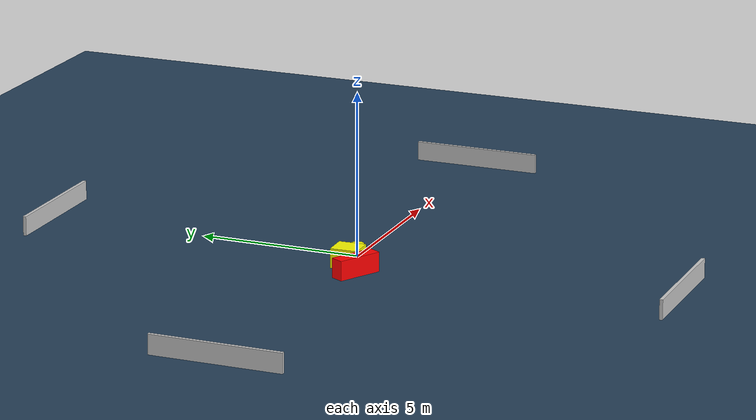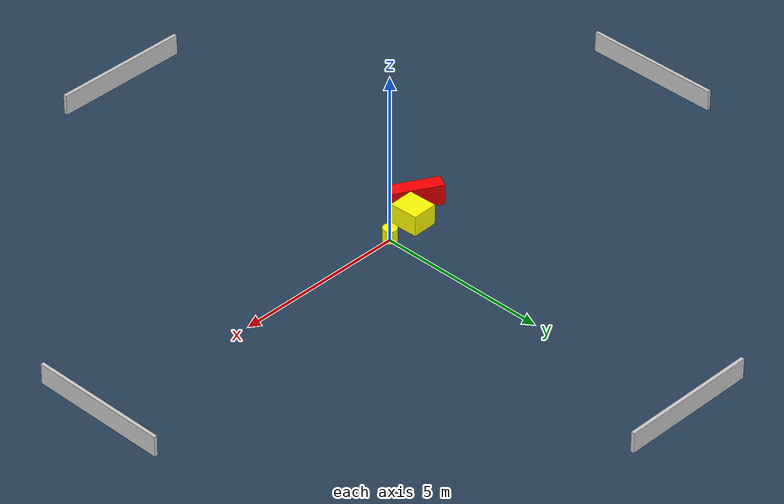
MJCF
<?xml version="1.0" ?>
<mujoco model="generated_environment">
  <option timestep="0.01" integrator="RK4" cone="elliptic"/>
  <default>
    <geom density="1"/>
  </default>
  <asset>
    <texture builtin="gradient" height="3072" name="skybox" rgb1="0.3 0.5 0.7" rgb2="0 0 0" type="skybox" width="512"/>
    <texture builtin="checker" height="300" name="groundplane" rgb1="0.2 0.3 0.4" rgb2="0.1 0.2 0.3" type="2d" width="300"/>
    <material name="groundplane" reflectance="0.2" texrepeat="5 5" texture="groundplane"/>
  </asset>
  <worldbody>
    <light dir="0 0 -1" directional="true" pos="0 0 1.5"/>
    <geom condim="3" friction="0.5 0.005 0.001" material="groundplane" name="floor" pos="0 0 0" size="0 0 0.05" type="plane"/>
    <body name="walls">
      <geom name="wall_1" condim="4" pos="-10.0 0.0 0.3" rgba="0.800000011920929 0.800000011920929 0.800000011920929 1.0" size="0.05 2.0 0.3" type="box"/>
      <geom name="wall_2" condim="4" pos="10.0 0.0 0.3" rgba="0.800000011920929 0.800000011920929 0.800000011920929 1.0" size="0.05 2.0 0.3" type="box"/>
      <geom name="wall_3" condim="4" pos="0.0 -10.0 0.3" rgba="0.800000011920929 0.800000011920929 0.800000011920929 1.0" size="2.0 0.05 0.3" type="box"/>
      <geom name="wall_4" condim="4" pos="0.0 10.0 0.3" rgba="0.800000011920929 0.800000011920929 0.800000011920929 1.0" size="2.0 0.05 0.3" type="box"/>
    </body>
    <body name="robot">
      <joint name="joint_x" type="slide" pos="0 0 0" axis="1 0 0"/>
      <joint name="joint_y" type="slide" pos="0 0 0" axis="0 1 0"/>
      <geom name="robot" type="cylinder" pos="0.0 0.0 0.2" size="0.2 0.2 0.0" mass="5.0" friction="1.0 0.005 0.0001" condim="4" rgba="1.0 1.0 0.0 1.0"/>
    </body>
    <body name="obstacle_1_movable">
      <geom name="obstacle_1_movable" condim="4" pos="-0.9252691553475401 -0.08751594734843145 0.3" euler="0 0 91.8431269163504" friction="0.0 0.005 0.001" rgba="1.0 1.0 0.0 1.0" size="0.4173488955547916 0.3716100426275648 0.3" type="box" mass="0.1"/>
      <joint type="free"/>
    </body>
    <body name="obstacle_2_static">
      <geom name="obstacle_2_static" condim="4" pos="-1.58198393165421 -0.6027750526638015 0.3" euler="0 0 331.12608319622296" friction="0.0 0.005 0.001" rgba="1.0 0.0 0.0 1.0" size="0.7092076703164867 0.2070277122063322 0.3" type="box"/>
    </body>
  </worldbody>
  <actuator>
    <motor name="actuator_x" joint="joint_x" gear="1" ctrlrange="-1 1"/>
    <motor name="actuator_y" joint="joint_y" gear="1" ctrlrange="-1 1"/>
  </actuator>
</mujoco>
